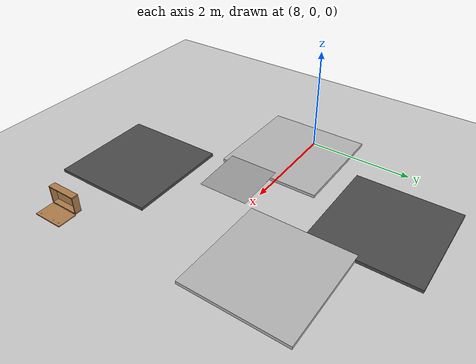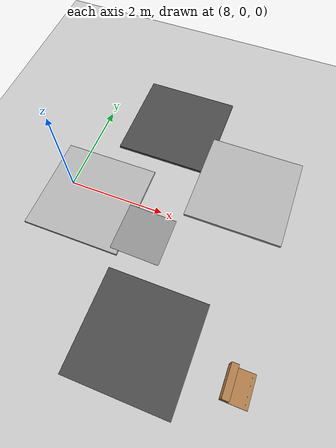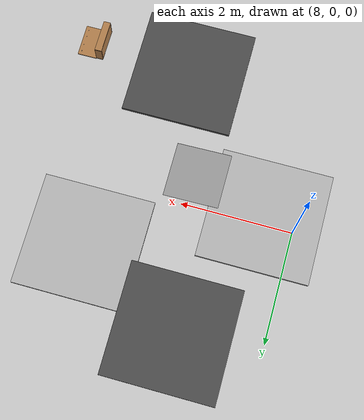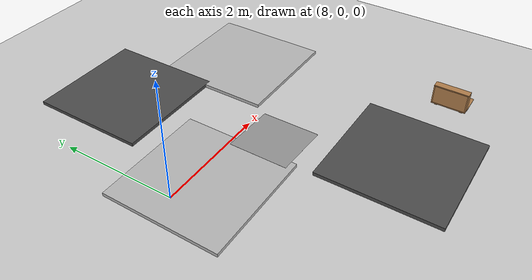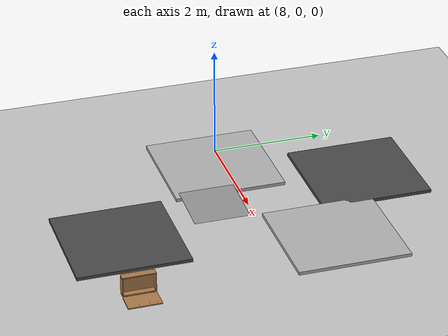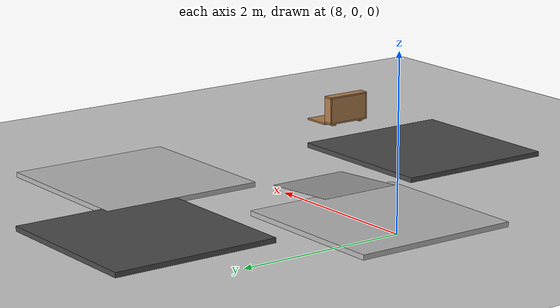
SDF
<sdf version="1.6">
 <world name="default">
  <model name="asphalt_plane_1">
   <static>1</static>
   <link name="link">
    <collision name="collision"><geometry><box><size>2 2 0.1</size></box></geometry></collision>
    <visual name="visual">
     <cast_shadows>0</cast_shadows>
     <geometry><box><size>2 2 0.1</size></box></geometry>
     <material>
      <script>
       <uri>model://texture3/materials/scripts</uri>
       <uri>model://texture3/materials/textures</uri>
       <name>vrc/asphalt</name>
      </script>
     </material>
    </visual>
   </link>
   <pose>10.5004 -2.44355 0 0 -0 0</pose>
  </model>
  <model name="texture1_0">
   <static>1</static>
   <link name="link">
    <collision name="collision"><geometry><box><size>2 2 0.1</size></box></geometry></collision>
    <visual name="visual">
     <cast_shadows>0</cast_shadows>
     <geometry><box><size>2 2 0.1</size></box></geometry>
     <material>
      <script>
       <uri>model://texture1/materials/scripts</uri>
       <uri>model://texture1/materials/textures</uri>
       <name>vrc/texture1</name>
      </script>
     </material>
    </visual>
   </link>
   <pose>8.52201 -0.164778 0 0 -0 0</pose>
  </model>
  <model name="texture2_0">
   <static>1</static>
   <link name="link">
    <collision name="collision"><geometry><box><size>2 2 0.1</size></box></geometry></collision>
    <visual name="visual">
     <cast_shadows>0</cast_shadows>
     <geometry><box><size>2 2 0.1</size></box></geometry>
     <material>
      <script>
       <uri>model://texture2/materials/scripts</uri>
       <uri>model://texture2/materials/textures</uri>
       <name>vrc/texture2</name>
      </script>
     </material>
    </visual>
   </link>
   <pose>11.4317 1.11566 0 0 -0 0</pose>
  </model>
  <model name="unit_box_2">
   <pose>9.84963 -0.574909 0.03029 0 0.060407 -3.2e-05</pose>
   <link name="link">
    <inertial>
     <mass>1</mass>
     <inertia>
      <ixx>0.166667</ixx>
      <ixy>0</ixy>
      <ixz>0</ixz>
      <iyy>0.166667</iyy>
      <iyz>0</iyz>
      <izz>0.166667</izz>
     </inertia>
    </inertial>
    <collision name="collision"><geometry><box><size>1 1 0.000209837</size></box></geometry></collision>
    <visual name="visual">
     <geometry><box><size>1 1 0.000209837</size></box></geometry>
     <material>
      <script><name>Gazebo/Grey</name><uri>file://media/materials/scripts/gazebo.material</uri></script>
     </material>
    </visual>
   </link>
  </model>
  <model name="ground_plane">
   <static>1</static>
   <link name="link">
    <collision name="collision">
     <geometry><plane><normal>0 0 1</normal><size>100 100</size></plane></geometry>
     <surface><friction><ode><mu>100</mu><mu2>50</mu2></ode></friction></surface>
    </collision>
    <visual name="visual">
     <cast_shadows>0</cast_shadows>
     <geometry><plane><normal>0 0 1</normal><size>100 100</size></plane></geometry>
     <material>
      <script><uri>file://media/materials/scripts/gazebo.material</uri><name>Gazebo/Grey</name></script>
     </material>
    </visual>
   </link>
   <pose>-0.49205 0.443924 0 0 -0 0</pose>
  </model>
  <model name="wooden_case">
   <link name="base">
    <pose>0 0 0.024 0 -0 0</pose>
    <inertial>
     <pose>-0.022184 0 0.171592 0 -0 0</pose>
     <mass>3.96264</mass>
     <inertia>
      <ixx>0.213536</ixx>
      <ixy>0</ixy>
      <ixz>0.000779377</ixz>
      <iyy>0.0708943</iyy>
      <iyz>0</iyz>
      <izz>0.154604</izz>
     </inertia>
    </inertial>
    <collision name="collision_back">
     <pose>-0.053975 0 0.1778 0 -0 0</pose>
     <geometry><box><size>0.01905 0.5461 0.3175</size></box></geometry>
     <surface>
      <contact>
       <poissons_ratio>0.347</poissons_ratio>
       <elastic_modulus>8.8e+09</elastic_modulus>
       <ode><kp>100000</kp><kd>100</kd><max_vel>100</max_vel><min_depth>0.001</min_depth></ode>
      </contact>
      <friction>
       <torsional>
        <coefficient>1</coefficient>
        <use_patch_radius>0</use_patch_radius>
        <surface_radius>0.01</surface_radius>
       </torsional>
      </friction>
     </surface>
    </collision>
    <visual name="visual_back">
     <pose>-0.053975 0 0.1778 0 -0 0</pose>
     <geometry><box><size>0.01905 0.5461 0.3175</size></box></geometry>
     <material>
      <script><uri>file://media/materials/scripts/gazebo.material</uri><name>Gazebo/Wood</name></script>
     </material>
    </visual>
    <collision name="collision_bottom">
     <pose>0 0 0.009525 0 -0 0</pose>
     <geometry><box><size>0.127 0.5842 0.01905</size></box></geometry>
     <surface>
      <contact>
       <poissons_ratio>0.347</poissons_ratio>
       <elastic_modulus>8.8e+09</elastic_modulus>
       <ode><kp>100000</kp><kd>100</kd><max_vel>100</max_vel><min_depth>0.001</min_depth></ode>
      </contact>
      <friction>
       <torsional>
        <coefficient>1</coefficient>
        <use_patch_radius>0</use_patch_radius>
        <surface_radius>0.01</surface_radius>
       </torsional>
      </friction>
     </surface>
    </collision>
    <visual name="visual_bottom">
     <pose>0 0 0.009525 0 -0 0</pose>
     <geometry><box><size>0.127 0.5842 0.01905</size></box></geometry>
     <material>
      <script><uri>file://media/materials/scripts/gazebo.material</uri><name>Gazebo/Wood</name></script>
     </material>
    </visual>
    <collision name="collision_top">
     <pose>0 0 0.346075 0 -0 0</pose>
     <geometry><box><size>0.127 0.5842 0.01905</size></box></geometry>
     <surface>
      <contact>
       <poissons_ratio>0.347</poissons_ratio>
       <elastic_modulus>8.8e+09</elastic_modulus>
       <ode><kp>100000</kp><kd>100</kd><max_vel>100</max_vel><min_depth>0.001</min_depth></ode>
      </contact>
      <friction>
       <torsional>
        <coefficient>1</coefficient>
        <use_patch_radius>0</use_patch_radius>
        <surface_radius>0.01</surface_radius>
       </torsional>
      </friction>
     </surface>
    </collision>
    <visual name="visual_top">
     <pose>0 0 0.346075 0 -0 0</pose>
     <geometry><box><size>0.127 0.5842 0.01905</size></box></geometry>
     <material>
      <script><uri>file://media/materials/scripts/gazebo.material</uri><name>Gazebo/Wood</name></script>
     </material>
    </visual>
    <collision name="collision_left">
     <pose>0 -0.282575 0.1778 0 -0 0</pose>
     <geometry><box><size>0.127 0.01905 0.3175</size></box></geometry>
     <surface>
      <contact>
       <poissons_ratio>0.347</poissons_ratio>
       <elastic_modulus>8.8e+09</elastic_modulus>
       <ode><kp>100000</kp><kd>100</kd><max_vel>100</max_vel><min_depth>0.001</min_depth></ode>
      </contact>
      <friction>
       <torsional>
        <coefficient>1</coefficient>
        <use_patch_radius>0</use_patch_radius>
        <surface_radius>0.01</surface_radius>
       </torsional>
      </friction>
     </surface>
    </collision>
    <visual name="visual_left">
     <pose>0 -0.282575 0.1778 0 -0 0</pose>
     <geometry><box><size>0.127 0.01905 0.3175</size></box></geometry>
     <material>
      <script><uri>file://media/materials/scripts/gazebo.material</uri><name>Gazebo/Wood</name></script>
     </material>
    </visual>
    <collision name="collision_right">
     <pose>0 0.282575 0.1778 0 -0 0</pose>
     <geometry><box><size>0.127 0.01905 0.3175</size></box></geometry>
     <surface>
      <contact>
       <poissons_ratio>0.347</poissons_ratio>
       <elastic_modulus>8.8e+09</elastic_modulus>
       <ode><kp>100000</kp><kd>100</kd><max_vel>100</max_vel><min_depth>0.001</min_depth></ode>
      </contact>
      <friction>
       <torsional>
        <coefficient>1</coefficient>
        <use_patch_radius>0</use_patch_radius>
        <surface_radius>0.01</surface_radius>
       </torsional>
      </friction>
     </surface>
    </collision>
    <visual name="visual_right">
     <pose>0 0.282575 0.1778 0 -0 0</pose>
     <geometry><box><size>0.127 0.01905 0.3175</size></box></geometry>
     <material>
      <script><uri>file://media/materials/scripts/gazebo.material</uri><name>Gazebo/Wood</name></script>
     </material>
    </visual>
    <collision name="collision_block_left">
     <pose>0.0095 -0.2151 -0.012 0 -0 0</pose>
     <geometry><box><size>0.108 0.05 0.024</size></box></geometry>
     <surface>
      <contact>
       <poissons_ratio>0.347</poissons_ratio>
       <elastic_modulus>8.8e+09</elastic_modulus>
       <ode><kp>100000</kp><kd>100</kd><max_vel>100</max_vel><min_depth>0.001</min_depth></ode>
      </contact>
      <friction>
       <torsional>
        <coefficient>1</coefficient>
        <use_patch_radius>0</use_patch_radius>
        <surface_radius>0.01</surface_radius>
       </torsional>
      </friction>
     </surface>
    </collision>
    <visual name="visual_block_left">
     <pose>0.0095 -0.2151 -0.012 0 -0 0</pose>
     <geometry><box><size>0.108 0.05 0.024</size></box></geometry>
     <material>
      <script><uri>file://media/materials/scripts/gazebo.material</uri><name>Gazebo/Wood</name></script>
     </material>
    </visual>
    <collision name="collision_block_right">
     <pose>0.0095 0.2151 -0.012 0 -0 0</pose>
     <geometry><box><size>0.108 0.05 0.024</size></box></geometry>
     <surface>
      <contact>
       <poissons_ratio>0.347</poissons_ratio>
       <elastic_modulus>8.8e+09</elastic_modulus>
       <ode><kp>100000</kp><kd>100</kd><max_vel>100</max_vel><min_depth>0.001</min_depth></ode>
      </contact>
      <friction>
       <torsional>
        <coefficient>1</coefficient>
        <use_patch_radius>0</use_patch_radius>
        <surface_radius>0.01</surface_radius>
       </torsional>
      </friction>
     </surface>
    </collision>
    <visual name="visual_block_right">
     <pose>0.0095 0.2151 -0.012 0 -0 0</pose>
     <geometry><box><size>0.108 0.05 0.024</size></box></geometry>
     <material>
      <script><uri>file://media/materials/scripts/gazebo.material</uri><name>Gazebo/Wood</name></script>
     </material>
    </visual>
   </link>
   <link name="lid">
    <pose>0.243775 0 0.009525 0 -0 0</pose>
    <inertial>
     <mass>1.97874</mass>
     <inertia>
      <ixx>0.0563367</ixx>
      <ixy>0</ixy>
      <ixz>0</ixz>
      <iyy>0.020911</iyy>
      <iyz>0</iyz>
      <izz>0.0771281</izz>
     </inertia>
    </inertial>
    <collision name="collision">
     <geometry><box><size>0.3556 0.5842 0.01905</size></box></geometry>
     <surface>
      <contact>
       <poissons_ratio>0.347</poissons_ratio>
       <elastic_modulus>8.8e+09</elastic_modulus>
       <ode><kp>100000</kp><kd>100</kd><max_vel>100</max_vel><min_depth>0.001</min_depth></ode>
      </contact>
      <friction>
       <torsional>
        <coefficient>1</coefficient>
        <use_patch_radius>0</use_patch_radius>
        <surface_radius>0.01</surface_radius>
       </torsional>
      </friction>
     </surface>
    </collision>
    <visual name="visual">
     <geometry><box><size>0.3556 0.5842 0.01905</size></box></geometry>
     <material>
      <script><uri>file://media/materials/scripts/gazebo.material</uri><name>Gazebo/Wood</name></script>
     </material>
    </visual>
    <visual name="tee_nut_1">
     <pose>0.122 -0.216 0 0 -0 0</pose>
     <geometry><cylinder><radius>0.00635</radius><length>0.0192405</length></cylinder></geometry>
     <material>
      <script><uri>file://media/materials/scripts/gazebo.material</uri><name>Gazebo/Grey</name></script>
     </material>
    </visual>
    <visual name="tee_nut_2">
     <pose>0.122 -0.088 0 0 -0 0</pose>
     <geometry><cylinder><radius>0.00635</radius><length>0.0192405</length></cylinder></geometry>
     <material>
      <script><uri>file://media/materials/scripts/gazebo.material</uri><name>Gazebo/Grey</name></script>
     </material>
    </visual>
    <visual name="tee_nut_3">
     <pose>0.122 0.088 0 0 -0 0</pose>
     <geometry><cylinder><radius>0.00635</radius><length>0.0192405</length></cylinder></geometry>
     <material>
      <script><uri>file://media/materials/scripts/gazebo.material</uri><name>Gazebo/Grey</name></script>
     </material>
    </visual>
    <visual name="tee_nut_4">
     <pose>0.122 0.216 0 0 -0 0</pose>
     <geometry><cylinder><radius>0.00635</radius><length>0.0192405</length></cylinder></geometry>
     <material>
      <script><uri>file://media/materials/scripts/gazebo.material</uri><name>Gazebo/Grey</name></script>
     </material>
    </visual>
   </link>
   <joint name="lid_hinge" type="revolute">
    <pose>-0.1778 0 0.01905 0 -0 0</pose>
    <parent>base</parent>
    <child>lid</child>
    <axis>
     <xyz>0 1 0</xyz>
     <limit><upper>0.523599</upper><lower>-1.5708</lower></limit>
     <use_parent_model_frame>0</use_parent_model_frame>
     <dynamics><spring_reference>0</spring_reference><spring_stiffness>0</spring_stiffness></dynamics>
    </axis>
   </joint>
   <pose>12.1743 -2.56643 -0.001057 0 -0.000376 0</pose>
  </model>
  <model name="asphalt_plane">
   <static>1</static>
   <link name="link">
    <collision name="collision"><geometry><box><size>2 2 0.1</size></box></geometry></collision>
    <visual name="visual">
     <cast_shadows>0</cast_shadows>
     <geometry><box><size>2 2 0.1</size></box></geometry>
     <material>
      <script>
       <uri>model://texture3/materials/scripts</uri>
       <uri>model://texture3/materials/textures</uri>
       <name>vrc/asphalt</name>
      </script>
     </material>
    </visual>
   </link>
   <pose>9.54454 2.20363 0 0 -0 0</pose>
  </model>
 </world>
</sdf>
